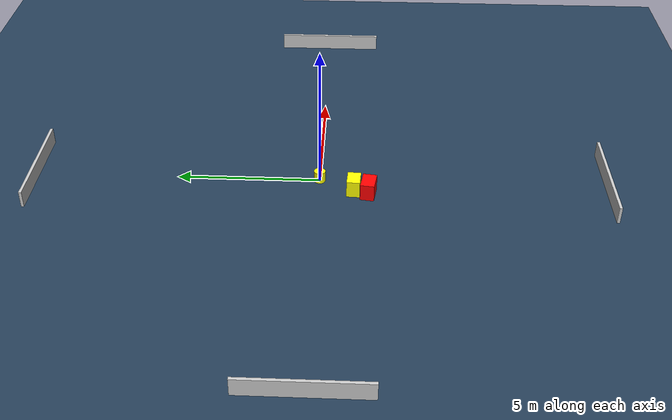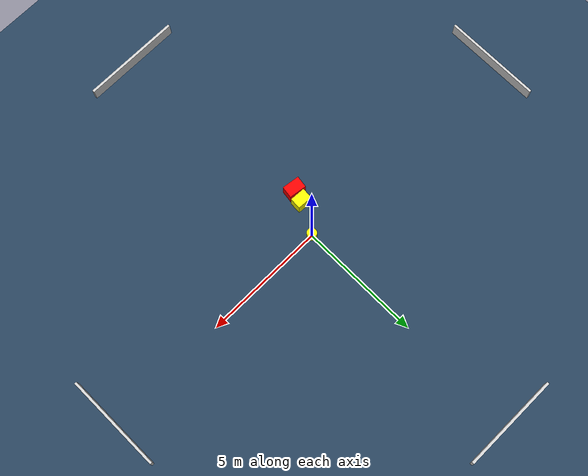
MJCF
<?xml version="1.0" ?>
<mujoco model="generated_environment">
  <option timestep="0.01" integrator="RK4" cone="elliptic"/>
  <default>
    <geom density="1"/>
  </default>
  <asset>
    <texture builtin="gradient" height="3072" name="skybox" rgb1="0.3 0.5 0.7" rgb2="0 0 0" type="skybox" width="512"/>
    <texture builtin="checker" height="300" name="groundplane" rgb1="0.2 0.3 0.4" rgb2="0.1 0.2 0.3" type="2d" width="300"/>
    <material name="groundplane" reflectance="0.2" texrepeat="5 5" texture="groundplane"/>
  </asset>
  <worldbody>
    <light dir="0 0 -1" directional="true" pos="0 0 1.5"/>
    <geom condim="3" friction="0.5 0.005 0.001" material="groundplane" name="floor" pos="0 0 0" size="0 0 0.05" type="plane"/>
    <body name="walls">
      <geom name="wall_1" condim="4" pos="-10.0 0.0 0.3" rgba="0.800000011920929 0.800000011920929 0.800000011920929 1.0" size="0.05 2.0 0.3" type="box"/>
      <geom name="wall_2" condim="4" pos="10.0 0.0 0.3" rgba="0.800000011920929 0.800000011920929 0.800000011920929 1.0" size="0.05 2.0 0.3" type="box"/>
      <geom name="wall_3" condim="4" pos="0.0 -10.0 0.3" rgba="0.800000011920929 0.800000011920929 0.800000011920929 1.0" size="2.0 0.05 0.3" type="box"/>
      <geom name="wall_4" condim="4" pos="0.0 10.0 0.3" rgba="0.800000011920929 0.800000011920929 0.800000011920929 1.0" size="2.0 0.05 0.3" type="box"/>
    </body>
    <body name="robot">
      <joint name="joint_x" type="slide" pos="0 0 0" axis="1 0 0"/>
      <joint name="joint_y" type="slide" pos="0 0 0" axis="0 1 0"/>
      <geom name="robot" type="cylinder" pos="0.0 0.0 0.2" size="0.2 0.2 0.0" mass="5.0" friction="1.0 0.005 0.0001" condim="4" rgba="1.0 1.0 0.0 1.0"/>
    </body>
    <body name="obstacle_1_movable">
      <geom name="obstacle_1_movable" condim="4" pos="-0.6304076409491355 -1.1978247410381047 0.3" euler="0 0 86.56638925403553" friction="0.0 0.005 0.001" rgba="1.0 1.0 0.0 1.0" size="0.22874823476092426 0.3135836987252849 0.3" type="box" mass="0.1"/>
      <joint type="free"/>
    </body>
    <body name="obstacle_2_static">
      <geom name="obstacle_2_static" condim="4" pos="-0.7623900263139272 -1.7078552126988908 0.3" euler="0 0 81.99925355386897" friction="0.0 0.005 0.001" rgba="1.0 0.0 0.0 1.0" size="0.24150784872718617 0.35696967496221776 0.3" type="box"/>
    </body>
  </worldbody>
  <actuator>
    <motor name="actuator_x" joint="joint_x" gear="1" ctrlrange="-1 1"/>
    <motor name="actuator_y" joint="joint_y" gear="1" ctrlrange="-1 1"/>
  </actuator>
</mujoco>
